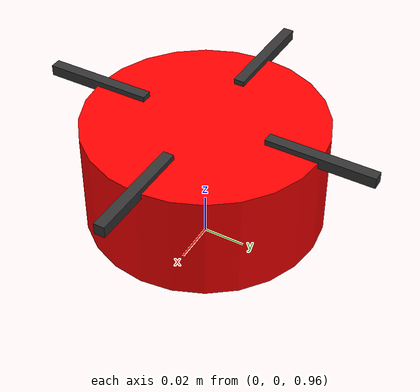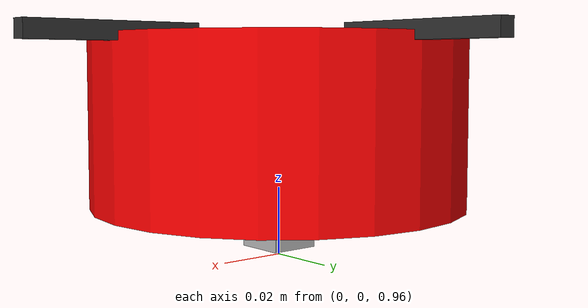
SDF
<?xml version="1.0"?>
<sdf version="1.6">
  <model name="quadrotor">
    <pose>0 0 1 0 0 0</pose>

    <link name="base_link">
      <inertial>
        <mass>0.1</mass>
        <inertia>
          <ixx>0.000096</ixx>
          <iyy>0.000096</iyy>
          <izz>0.000151</izz>
        </inertia>
      </inertial>

      <collision name="collision">
        <geometry>
          <cylinder>
            <radius>0.055</radius>
            <length>0.05</length>
          </cylinder>
        </geometry>
      </collision>

      <visual name="visual">
        <geometry>
          <cylinder>
            <radius>0.055</radius>
            <length>0.05</length>
          </cylinder>
        </geometry>
        <material>
          <ambient>1.0 0.0 0.0 1.0</ambient>
          <diffuse>1.0 0.0 0.0 1.0</diffuse>
          <specular>0.5 0.5 0.5 1.0</specular>
        </material>
      </visual>

      <!-- Add arms/propellers for better visibility (scaled to drone size) -->
      <visual name="arm_1">
        <pose>0.055 0.0 0.025 0 0 0</pose>
        <geometry>
          <box>
            <size>0.05 0.005 0.005</size>
          </box>
        </geometry>
        <material>
          <ambient>0.2 0.2 0.2 1.0</ambient>
          <diffuse>0.2 0.2 0.2 1.0</diffuse>
        </material>
      </visual>
      <visual name="arm_2">
        <pose>-0.055 0.0 0.025 0 0 0</pose>
        <geometry>
          <box>
            <size>0.05 0.005 0.005</size>
          </box>
        </geometry>
        <material>
          <ambient>0.2 0.2 0.2 1.0</ambient>
          <diffuse>0.2 0.2 0.2 1.0</diffuse>
        </material>
      </visual>
      <visual name="arm_3">
        <pose>0.0 0.055 0.025 0 0 0</pose>
        <geometry>
          <box>
            <size>0.005 0.05 0.005</size>
          </box>
        </geometry>
        <material>
          <ambient>0.2 0.2 0.2 1.0</ambient>
          <diffuse>0.2 0.2 0.2 1.0</diffuse>
        </material>
      </visual>
      <visual name="arm_4">
        <pose>0.0 -0.055 0.025 0 0 0</pose>
        <geometry>
          <box>
            <size>0.005 0.05 0.005</size>
          </box>
        </geometry>
        <material>
          <ambient>0.2 0.2 0.2 1.0</ambient>
          <diffuse>0.2 0.2 0.2 1.0</diffuse>
        </material>
      </visual>

      <!-- Downward-facing camera -->
      <sensor name="camera" type="camera">
        <camera>
          <horizontal_fov>1.047</horizontal_fov>
          <image>
            <width>640</width>
            <height>480</height>
          </image>
          <clip>
            <near>0.05</near>
            <far>10</far>
          </clip>
        </camera>
        <always_on>1</always_on>
        <update_rate>30</update_rate>
        <visualize>true</visualize>
        <!-- Camera sensor works natively in Gazebo; bridge to ROS 2 using ros_gz_image -->
      </sensor>
    </link>

    <!-- Camera link (pointing down) -->
    <link name="camera_link">
      <pose>0 0 -0.03 0 1.5708 0</pose>
      <visual name="visual">
        <geometry>
          <box>
            <size>0.015 0.015 0.015</size>
          </box>
        </geometry>
      </visual>
    </link>

    <joint name="camera_joint" type="fixed">
      <parent>base_link</parent>
      <child>camera_link</child>
    </joint>

    <!-- Odometry publisher system (Gazebo native) -->
    <plugin filename="gz-sim-odometry-publisher-system" name="gz::sim::systems::OdometryPublisher">
      <odom_topic>odom</odom_topic>
      <odom_frame>odom</odom_frame>
      <robot_base_frame>base_link</robot_base_frame>
      <publish_link_pose>true</publish_link_pose>
      <publish_sensor_pose>false</publish_sensor_pose>
      <update_rate>50</update_rate>
    </plugin>

    <!-- Velocity control: cmd_vel will be handled via ROS 2 bridge -->
    <!-- See setup_ros2_bridge.sh for bridging Gazebo topics to ROS 2 -->
    <!-- For quadrotor control, you may need a custom controller node that -->
    <!-- subscribes to /cmd_vel and applies forces/torques to the drone -->

  </model>
</sdf>
